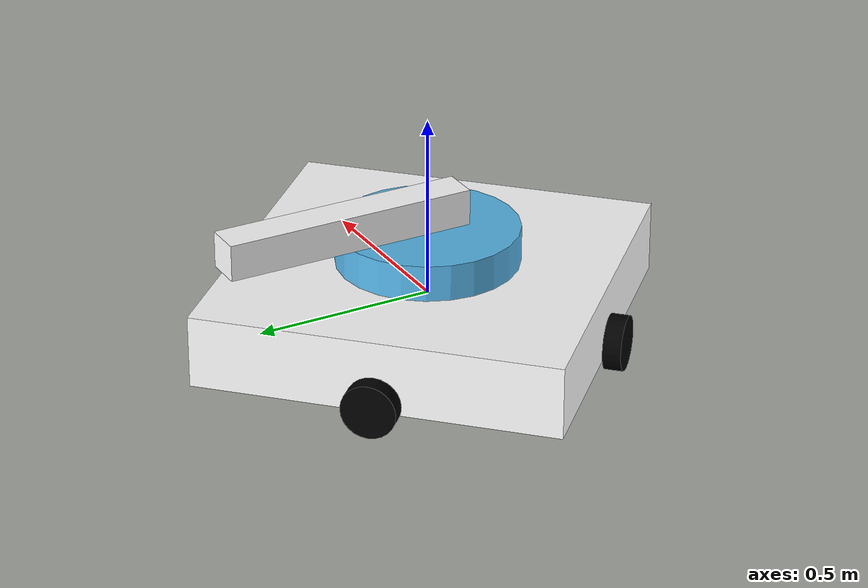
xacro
<?xml version="1.0"?>
<robot name="holonomicdrive" xmlns:xacro="http://ros.org/wiki/xacro">

  <material name="white">
    <color rgba="1 1 1 1"/>
  </material>

  <material name="black">
    <color rgba="0 0 0 1"/>
  </material>

  <xacro:macro name="default_inertial" params="mass">
    <inertial>
      <mass value="${mass}" />
      <inertia ixx="1.0" ixy="0.0" ixz="0.0" iyy="1.0" iyz="0.0" izz="1.0" />
    </inertial>
  </xacro:macro>

<!-- x axis red, y axis green -->
  <xacro:property name="base_side_length" value="1" />
  <xacro:property name="wheel_offset" value="${ (((base_side_length * base_side_length)/2) ** 0.5)/2}" />

  <xacro:property name="wheel_width" value = "${0.05}"/>
  <xacro:property name="wheel_width_offset" value = "${ (((wheel_width/2) * (wheel_width/2))/2) ** 0.5}"/>

  <link name="base_link">
    <visual>
      <geometry>
        <box size = "${base_side_length} ${base_side_length} 0.2"/>
      </geometry>
      <material name = "white"/>
      <origin xyz = "0 0 0" rpy = "0 0 ${-pi/4}"/>
    </visual>
    <collision>
      <geometry>
        <box size = "${base_side_length} ${base_side_length} 0.2"/>
      </geometry>
      <origin xyz = "0 0 0" rpy = "0 0 ${-pi/4}"/>
    </collision>
    <xacro:default_inertial mass="20"/>
  </link>

  <link name="turret">
    <visual>
      <geometry>
        <cylinder radius="0.25" length="0.1"/>
      </geometry>
    </visual>
    <collision>
      <geometry>
        <cylinder radius="0.25" length="0.1"/>
      </geometry>
    </collision>
    <xacro:default_inertial mass="1"/>
  </link>

  <joint name="turret_joint" type="continuous">
    <parent link="base_link"/>
    <child link="turret"/>
    <origin xyz="0.0 0.0 0.15"/>
    <axis xyz="0.0 0.0 1"/>
    <limit effort="30" velocity="1.0"/>
    <dynamics damping="0.0" friction="0.1"/>
  </joint>

  <transmission name="turret_swivel_trans">
    <type>transmission_interface/SimpleTransmission</type>
    <actuator name="$turret_swivel_motor">
      <mechanicalReduction>1</mechanicalReduction>
    </actuator>
    <joint name="turret_joint">
      <hardwareInterface>VelocityJointInterface</hardwareInterface>
    </joint>
  </transmission>

  <link name="turret_bar">
    <visual>
      <geometry>
        <box size="0.7 0.1 0.1"/>
      </geometry>
      <material name="white"/>
      <origin rpy="0.0 0.0 ${pi/2}"/>
    </visual>
      <collision>
        <geometry>
        <box size="0.7 0.1 0.1"/>
      </geometry>
      <origin rpy="0.0 0.0 ${pi/2}"/>
    </collision>
  </link>

  <joint name="turret_to_bar_link" type="fixed">
    <parent link="turret"/>
    <child link="turret_bar"/>
    <origin xyz="0 0.25 0.1"/>
  </joint>

  <link name="right_front_wheel">
    <visual>
      <geometry>
        <cylinder radius = "0.075" length = "0.05"/>
      </geometry>
      <material name = "black"/>
      <origin rpy="0 ${pi/2} ${(pi/4) + pi}"/>
    </visual>
    <collision>
     <geometry>
        <cylinder radius = "0.075" length = "0.05"/>
      </geometry>
      <origin rpy="0 ${pi/2} ${(pi/4) + pi}"/>
    </collision>
    <xacro:default_inertial mass="1"/>
  </link>

  <joint name="right_front_wheel_joint" type="continuous">
    <parent link="base_link"/>
    <child link="right_front_wheel"/>
    <origin xyz = "${wheel_offset + wheel_width_offset} ${wheel_offset + wheel_width_offset} -0.075"/>
    <axis xyz ="1 1 0"/>
    <limit effort="30" velocity="100"/>
    <dynamics damping="0.0" friction="0.0"/>
  </joint>

  <transmission name="right_front_wheel_trans">
    <type>SimpleTransmission</type>
    <actuator name="right_front_wheel_motor">
      <mechanicalReduction>1</mechanicalReduction>
    </actuator>
    <joint name="right_front_wheel_joint">
      <hardwareInterface>VelocityJointInterface</hardwareInterface>
    </joint>
  </transmission>

  <link name="left_front_wheel">
    <visual>
      <geometry>
        <cylinder radius = "0.075" length = "0.05"/>
      </geometry>
      <material name = "black"/>
      <origin rpy="0 ${pi/2} ${-pi/4}"/>
    </visual>
    <collision>
     <geometry>
        <cylinder radius = "0.075" length = "0.05"/>
      </geometry>
      <origin rpy="0 ${pi/2} ${-pi/4}"/>
    </collision>
    <xacro:default_inertial mass="1"/>
  </link>

  <joint name="left_front_wheel_joint" type="continuous">
    <parent link="base_link"/>
    <child link="left_front_wheel"/>
    <origin xyz = "${- wheel_offset - wheel_width_offset} ${wheel_offset + wheel_width_offset} -0.075"/>
    <axis xyz ="-1 1 0"/>
    <limit effort="30" velocity="100"/>
    <dynamics damping="0.0" friction="0.0"/>
  </joint>

  <transmission name="left_front_wheel_trans">
    <type>SimpleTransmission</type>
    <actuator name="left_front_wheel_motor">
      <mechanicalReduction>1</mechanicalReduction>
    </actuator>
    <joint name="left_front_wheel_joint">
      <hardwareInterface>VelocityJointInterface</hardwareInterface>
    </joint>
  </transmission>

  <link name="left_back_wheel">
    <visual>
      <geometry>
        <cylinder radius = "0.075" length = "0.05"/>
      </geometry>
      <material name = "black"/>
      <origin rpy="0 ${pi/2} ${pi/4}"/>
    </visual>
    <collision>
     <geometry>
        <cylinder radius = "0.075" length = "0.05"/>
      </geometry>
      <origin rpy="0 ${pi/2} ${pi/4}"/>
    </collision>
    <xacro:default_inertial mass="1"/>
  </link>

  <joint name="left_back_wheel_joint" type="continuous">
    <parent link="base_link"/>
    <child link="left_back_wheel"/>
    <origin xyz = "${- wheel_offset - wheel_width_offset} ${-wheel_offset - wheel_width_offset} -0.075"/>
    <axis xyz ="-1 -1 0"/>
    <limit effort="30" velocity="100"/>
    <dynamics damping="0.0" friction="0.0"/>
  </joint>

  <transmission name="left_back_wheel_trans">
    <type>SimpleTransmission</type>
    <actuator name="left_back_wheel_motor">
      <mechanicalReduction>1</mechanicalReduction>
    </actuator>
    <joint name="left_back_wheel_joint">
      <hardwareInterface>VelocityJointInterface</hardwareInterface>
    </joint>
  </transmission>

  <link name="right_back_wheel">
    <visual>
      <geometry>
        <cylinder radius = "0.075" length = "0.05"/>
      </geometry>
      <material name = "black"/>
      <origin rpy="0 ${pi/2} ${(-pi/4) + (pi)}"/>
    </visual>
    <collision>
     <geometry>
        <cylinder radius = "0.075" length = "0.05"/>
      </geometry>
      <origin rpy="0 ${pi/2} ${(-pi/4) + pi}"/>
    </collision>
    <xacro:default_inertial mass="1"/>
  </link>

  <joint name="right_back_wheel_joint" type="continuous">
    <parent link="base_link"/>
    <child link="right_back_wheel"/>
    <origin xyz = "${wheel_offset + wheel_width_offset} ${-wheel_offset - wheel_width_offset} -0.075"/>
    <axis xyz ="1 -1 0"/>
    <limit effort="30" velocity="100"/>
    <dynamics damping="0.0" friction="0.0"/>
  </joint>

  <transmission name="right_back_wheel_trans">
    <type>SimpleTransmission</type>
    <actuator name="right_back_wheel_motor">
      <mechanicalReduction>1</mechanicalReduction>
    </actuator>
    <joint name="right_back_wheel_joint">
      <hardwareInterface>VelocityJointInterface</hardwareInterface>
    </joint>
  </transmission>

  <gazebo>
    <plugin name="gazebo_ros_control" filename="libgazebo_ros_control.so">
      <robotNamespace>/</robotNamespace>
    </plugin>
  </gazebo>

</robot>
